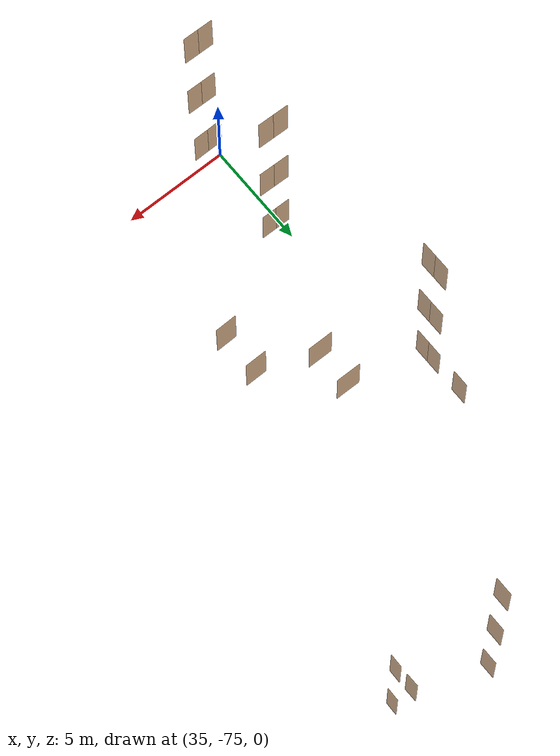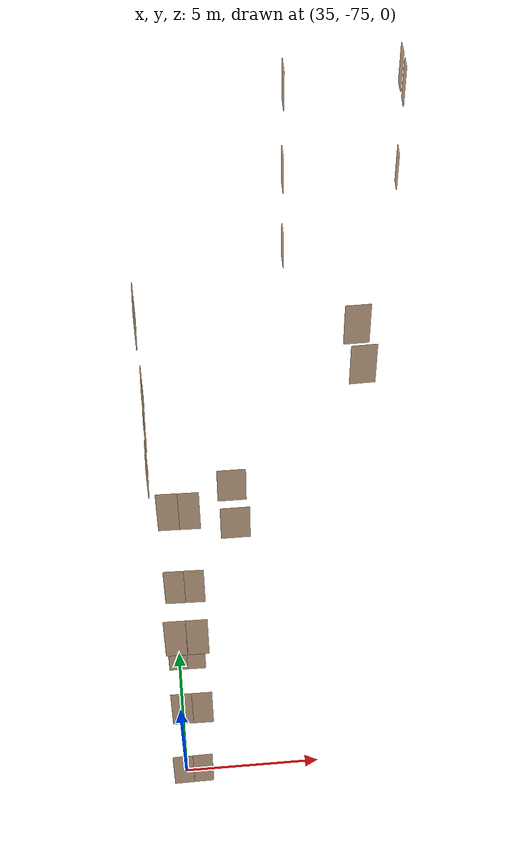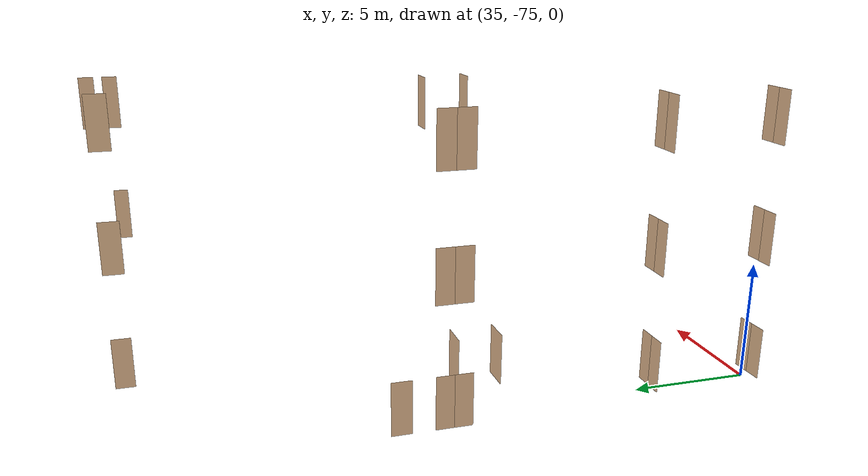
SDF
<sdf version="1.7">
 <world name="sim_world">
  <model name="p19">
   <pose>34.12238896625288 -61.800835530799134 0.0 0 0 1.5707963267948966</pose>
   <link name="right">
    <pose>0.3727222897099356 0 1.11 0 0 0</pose>
    <visual name="right_visual">
     <geometry><box><size>0.7354445794198712 0.03 2.2</size></box></geometry>
     <material>
      <ambient>0.5 0.25 0 0.6</ambient>
      <diffuse>0.5 0.25 0 0.6</diffuse>
      <pbr><metal><metalness>0.0</metalness></metal></pbr>
     </material>
    </visual>
    <collision name="right_collision">
     <geometry><box><size>0.7354445794198712 0.03 2.2</size></box></geometry>
     <surface><contact><collide_bitmask>0x02</collide_bitmask></contact></surface>
    </collision>
    <inertial>
     <mass>50.0</mass>
     <inertia><ixx>20.17041666666667</ixx><iyy>22.420328039158633</iyy><izz>2.2574113724919638</izz></inertia>
    </inertial>
   </link>
   <joint name="right_joint" type="revolute">
    <parent>world</parent>
    <child>right</child>
    <axis><xyz>0 0 -1</xyz><limit><lower>0</lower><upper>1.57</upper></limit></axis>
    <pose>0.3727222897099356 0 0 0 0 0</pose>
   </joint>
   <link name="left">
    <pose>-0.3727222897099356 0 1.11 0 0 0</pose>
    <visual name="left_visual">
     <geometry><box><size>0.7354445794198712 0.03 2.2</size></box></geometry>
     <material>
      <ambient>0.5 0.25 0 0.6</ambient>
      <diffuse>0.5 0.25 0 0.6</diffuse>
      <pbr><metal><metalness>0.0</metalness></metal></pbr>
     </material>
    </visual>
    <collision name="left_collision">
     <geometry><box><size>0.7354445794198712 0.03 2.2</size></box></geometry>
     <surface><contact><collide_bitmask>0x02</collide_bitmask></contact></surface>
    </collision>
    <inertial>
     <mass>50.0</mass>
     <inertia><ixx>20.17041666666667</ixx><iyy>22.420328039158633</iyy><izz>2.2574113724919638</izz></inertia>
    </inertial>
   </link>
   <joint name="left_joint" type="revolute">
    <parent>world</parent>
    <child>left</child>
    <axis><xyz>0 0 -1</xyz><limit><lower>-1.57</lower><upper>0</upper></limit></axis>
    <pose>-0.3727222897099356 0 0 0 0 0</pose>
   </joint>
   <plugin name="register_component" filename="libregister_component.so">
    <component name="Door">
     <v_max_door>0.5</v_max_door>
     <a_max_door>0.3</a_max_door>
     <a_nom_door>0.15</a_nom_door>
     <dx_min_door>0.01</dx_min_door>
     <f_max_door>500.0</f_max_door>
     <ros_interface>true</ros_interface>
     <door name="p19" type="DoubleSwingDoor" left_joint_name="left_joint" right_joint_name="right_joint"/>
    </component>
   </plugin>
  </model>
  <model name="p23">
   <pose>37.64218467600962 -64.78136944090551 0.0 0 0 3.1396408370814752</pose>
   <link name="right">
    <pose>0 0 1.11 0 0 0</pose>
    <visual name="right_visual">
     <geometry><box><size>1.219588132161828 0.03 2.2</size></box></geometry>
     <material>
      <ambient>0.5 0.25 0 0.6</ambient>
      <diffuse>0.5 0.25 0 0.6</diffuse>
      <pbr><metal><metalness>0.0</metalness></metal></pbr>
     </material>
    </visual>
    <collision name="right_collision">
     <geometry><box><size>1.219588132161828 0.03 2.2</size></box></geometry>
     <surface><contact><collide_bitmask>0x02</collide_bitmask></contact></surface>
    </collision>
    <inertial>
     <mass>50.0</mass>
     <inertia><ixx>20.17041666666667</ixx><iyy>26.364146717124907</iyy><izz>6.201230050458236</izz></inertia>
    </inertial>
   </link>
   <joint name="right_joint" type="revolute">
    <parent>world</parent>
    <child>right</child>
    <axis><xyz>0 0 1</xyz><limit><lower>0</lower><upper>1.57</upper></limit></axis>
    <pose>0.614794066080914 0 0 0 0 0</pose>
   </joint>
   <plugin name="register_component" filename="libregister_component.so">
    <component name="Door">
     <v_max_door>0.5</v_max_door>
     <a_max_door>0.3</a_max_door>
     <a_nom_door>0.15</a_nom_door>
     <dx_min_door>0.01</dx_min_door>
     <f_max_door>500.0</f_max_door>
     <ros_interface>true</ros_interface>
     <door name="p23" type="SwingDoor" left_joint_name="empty_joint" right_joint_name="right_joint"/>
    </component>
   </plugin>
  </model>
  <model name="p24">
   <pose>37.62421854167287 -62.91381366478035 0.0 0 0 3.1363686303415452</pose>
   <link name="right">
    <pose>0 0 1.11 0 0 0</pose>
    <visual name="right_visual">
     <geometry><box><size>1.210824930721479 0.03 2.2</size></box></geometry>
     <material>
      <ambient>0.5 0.25 0 0.6</ambient>
      <diffuse>0.5 0.25 0 0.6</diffuse>
      <pbr><metal><metalness>0.0</metalness></metal></pbr>
     </material>
    </visual>
    <collision name="right_collision">
     <geometry><box><size>1.210824930721479 0.03 2.2</size></box></geometry>
     <surface><contact><collide_bitmask>0x02</collide_bitmask></contact></surface>
    </collision>
    <inertial>
     <mass>50.0</mass>
     <inertia><ixx>20.17041666666667</ixx><iyy>26.275404220236148</iyy><izz>6.112487553569475</izz></inertia>
    </inertial>
   </link>
   <joint name="right_joint" type="revolute">
    <parent>world</parent>
    <child>right</child>
    <axis><xyz>0 0 -1</xyz><limit><lower>0</lower><upper>1.57</upper></limit></axis>
    <pose>0.6104124653607395 0 0 0 0 0</pose>
   </joint>
   <plugin name="register_component" filename="libregister_component.so">
    <component name="Door">
     <v_max_door>0.5</v_max_door>
     <a_max_door>0.3</a_max_door>
     <a_nom_door>0.15</a_nom_door>
     <dx_min_door>0.01</dx_min_door>
     <f_max_door>500.0</f_max_door>
     <ros_interface>true</ros_interface>
     <door name="p24" type="SwingDoor" left_joint_name="empty_joint" right_joint_name="right_joint"/>
    </component>
   </plugin>
  </model>
  <model name="p28">
   <pose>35.298942994281674 -70.71621581582772 0.0 0 0 3.1317184949314316</pose>
   <link name="right">
    <pose>0.3589568635866615 0 1.11 0 0 0</pose>
    <visual name="right_visual">
     <geometry><box><size>0.707913727173323 0.03 2.2</size></box></geometry>
     <material>
      <ambient>0.5 0.25 0 0.6</ambient>
      <diffuse>0.5 0.25 0 0.6</diffuse>
      <pbr><metal><metalness>0.0</metalness></metal></pbr>
     </material>
    </visual>
    <collision name="right_collision">
     <geometry><box><size>0.707913727173323 0.03 2.2</size></box></geometry>
     <surface><contact><collide_bitmask>0x02</collide_bitmask></contact></surface>
    </collision>
    <inertial>
     <mass>50.0</mass>
     <inertia><ixx>20.17041666666667</ixx><iyy>22.254757688001778</iyy><izz>2.091841021335109</izz></inertia>
    </inertial>
   </link>
   <joint name="right_joint" type="revolute">
    <parent>world</parent>
    <child>right</child>
    <axis><xyz>0 0 -1</xyz><limit><lower>0</lower><upper>1.57</upper></limit></axis>
    <pose>0.3589568635866615 0 0 0 0 0</pose>
   </joint>
   <link name="left">
    <pose>-0.3589568635866615 0 1.11 0 0 0</pose>
    <visual name="left_visual">
     <geometry><box><size>0.707913727173323 0.03 2.2</size></box></geometry>
     <material>
      <ambient>0.5 0.25 0 0.6</ambient>
      <diffuse>0.5 0.25 0 0.6</diffuse>
      <pbr><metal><metalness>0.0</metalness></metal></pbr>
     </material>
    </visual>
    <collision name="left_collision">
     <geometry><box><size>0.707913727173323 0.03 2.2</size></box></geometry>
     <surface><contact><collide_bitmask>0x02</collide_bitmask></contact></surface>
    </collision>
    <inertial>
     <mass>50.0</mass>
     <inertia><ixx>20.17041666666667</ixx><iyy>22.254757688001778</iyy><izz>2.091841021335109</izz></inertia>
    </inertial>
   </link>
   <joint name="left_joint" type="revolute">
    <parent>world</parent>
    <child>left</child>
    <axis><xyz>0 0 -1</xyz><limit><lower>-1.57</lower><upper>0</upper></limit></axis>
    <pose>-0.3589568635866615 0 0 0 0 0</pose>
   </joint>
   <plugin name="register_component" filename="libregister_component.so">
    <component name="Door">
     <v_max_door>0.5</v_max_door>
     <a_max_door>0.3</a_max_door>
     <a_nom_door>0.15</a_nom_door>
     <dx_min_door>0.01</dx_min_door>
     <f_max_door>500.0</f_max_door>
     <ros_interface>true</ros_interface>
     <door name="p28" type="DoubleSwingDoor" left_joint_name="left_joint" right_joint_name="right_joint"/>
    </component>
   </plugin>
  </model>
  <model name="p29">
   <pose>35.28278791739507 -75.47439705490214 0.0 0 0 0.014923811866204915</pose>
   <link name="right">
    <pose>0.36593546407703104 0 1.11 0 0 0</pose>
    <visual name="right_visual">
     <geometry><box><size>0.7218709281540621 0.03 2.2</size></box></geometry>
     <material>
      <ambient>0.5 0.25 0 0.6</ambient>
      <diffuse>0.5 0.25 0 0.6</diffuse>
      <pbr><metal><metalness>0.0</metalness></metal></pbr>
     </material>
    </visual>
    <collision name="right_collision">
     <geometry><box><size>0.7218709281540621 0.03 2.2</size></box></geometry>
     <surface><contact><collide_bitmask>0x02</collide_bitmask></contact></surface>
    </collision>
    <inertial>
     <mass>50.0</mass>
     <inertia><ixx>20.17041666666667</ixx><iyy>22.337906820475034</iyy><izz>2.1749901538083627</izz></inertia>
    </inertial>
   </link>
   <joint name="right_joint" type="revolute">
    <parent>world</parent>
    <child>right</child>
    <axis><xyz>0 0 -1</xyz><limit><lower>0</lower><upper>1.57</upper></limit></axis>
    <pose>0.36593546407703104 0 0 0 0 0</pose>
   </joint>
   <link name="left">
    <pose>-0.36593546407703104 0 1.11 0 0 0</pose>
    <visual name="left_visual">
     <geometry><box><size>0.7218709281540621 0.03 2.2</size></box></geometry>
     <material>
      <ambient>0.5 0.25 0 0.6</ambient>
      <diffuse>0.5 0.25 0 0.6</diffuse>
      <pbr><metal><metalness>0.0</metalness></metal></pbr>
     </material>
    </visual>
    <collision name="left_collision">
     <geometry><box><size>0.7218709281540621 0.03 2.2</size></box></geometry>
     <surface><contact><collide_bitmask>0x02</collide_bitmask></contact></surface>
    </collision>
    <inertial>
     <mass>50.0</mass>
     <inertia><ixx>20.17041666666667</ixx><iyy>22.337906820475034</iyy><izz>2.1749901538083627</izz></inertia>
    </inertial>
   </link>
   <joint name="left_joint" type="revolute">
    <parent>world</parent>
    <child>left</child>
    <axis><xyz>0 0 -1</xyz><limit><lower>-1.57</lower><upper>0</upper></limit></axis>
    <pose>-0.36593546407703104 0 0 0 0 0</pose>
   </joint>
   <plugin name="register_component" filename="libregister_component.so">
    <component name="Door">
     <v_max_door>0.5</v_max_door>
     <a_max_door>0.3</a_max_door>
     <a_nom_door>0.15</a_nom_door>
     <dx_min_door>0.01</dx_min_door>
     <f_max_door>500.0</f_max_door>
     <ros_interface>true</ros_interface>
     <door name="p29" type="DoubleSwingDoor" left_joint_name="left_joint" right_joint_name="right_joint"/>
    </component>
   </plugin>
  </model>
  <model name="p32">
   <pose>40.9856522769696 -49.66876166632103 0.0 0 0 1.5707963267948966</pose>
   <link name="right">
    <pose>0 0 1.11 0 0 0</pose>
    <visual name="right_visual">
     <geometry><box><size>0.8034647862285504 0.03 2.2</size></box></geometry>
     <material>
      <ambient>0.5 0.25 0 0.6</ambient>
      <diffuse>0.5 0.25 0 0.6</diffuse>
      <pbr><metal><metalness>0.0</metalness></metal></pbr>
     </material>
    </visual>
    <collision name="right_collision">
     <geometry><box><size>0.8034647862285504 0.03 2.2</size></box></geometry>
     <surface><contact><collide_bitmask>0x02</collide_bitmask></contact></surface>
    </collision>
    <inertial>
     <mass>50.0</mass>
     <inertia><ixx>20.17041666666667</ixx><iyy>22.85648192795538</iyy><izz>2.6935652612887093</izz></inertia>
    </inertial>
   </link>
   <joint name="right_joint" type="revolute">
    <parent>world</parent>
    <child>right</child>
    <axis><xyz>0 0 1</xyz><limit><lower>0</lower><upper>1.57</upper></limit></axis>
    <pose>0.4067323931142752 0 0 0 0 0</pose>
   </joint>
   <plugin name="register_component" filename="libregister_component.so">
    <component name="Door">
     <v_max_door>0.5</v_max_door>
     <a_max_door>0.3</a_max_door>
     <a_nom_door>0.15</a_nom_door>
     <dx_min_door>0.01</dx_min_door>
     <f_max_door>500.0</f_max_door>
     <ros_interface>true</ros_interface>
     <door name="p32" type="SwingDoor" left_joint_name="empty_joint" right_joint_name="right_joint"/>
    </component>
   </plugin>
  </model>
  <model name="door5">
   <pose>34.12012236674472 -59.730774643714305 0.0 0 0 -1.5707963267948966</pose>
   <link name="right">
    <pose>0 0 1.11 0 0 0</pose>
    <visual name="right_visual">
     <geometry><box><size>0.8218197979319137 0.03 2.2</size></box></geometry>
     <material>
      <ambient>0.5 0.25 0 0.6</ambient>
      <diffuse>0.5 0.25 0 0.6</diffuse>
      <pbr><metal><metalness>0.0</metalness></metal></pbr>
     </material>
    </visual>
    <collision name="right_collision">
     <geometry><box><size>0.8218197979319137 0.03 2.2</size></box></geometry>
     <surface><contact><collide_bitmask>0x02</collide_bitmask></contact></surface>
    </collision>
    <inertial>
     <mass>50.0</mass>
     <inertia><ixx>20.17041666666667</ixx><iyy>22.980782417803553</iyy><izz>2.8178657511368814</izz></inertia>
    </inertial>
   </link>
   <joint name="right_joint" type="revolute">
    <parent>world</parent>
    <child>right</child>
    <axis><xyz>0 0 -1</xyz><limit><lower>0</lower><upper>1.57</upper></limit></axis>
    <pose>0.41590989896595687 0 0 0 0 0</pose>
   </joint>
   <plugin name="register_component" filename="libregister_component.so">
    <component name="Door">
     <v_max_door>0.5</v_max_door>
     <a_max_door>0.3</a_max_door>
     <a_nom_door>0.15</a_nom_door>
     <dx_min_door>0.01</dx_min_door>
     <f_max_door>500.0</f_max_door>
     <ros_interface>true</ros_interface>
     <door name="door5" type="SwingDoor" left_joint_name="empty_joint" right_joint_name="right_joint"/>
    </component>
   </plugin>
  </model>
  <model name="puerta6">
   <pose>46.037069137630155 -49.996339006558664 5.0 0 0 1.5488676221850708</pose>
   <link name="right">
    <pose>0 0 1.11 0 0 0</pose>
    <visual name="right_visual">
     <geometry><box><size>0.5999658065378123 0.03 2.2</size></box></geometry>
     <material>
      <ambient>0.5 0.25 0 0.6</ambient>
      <diffuse>0.5 0.25 0 0.6</diffuse>
      <pbr><metal><metalness>0.0</metalness></metal></pbr>
     </material>
    </visual>
    <collision name="right_collision">
     <geometry><box><size>0.5999658065378123 0.03 2.2</size></box></geometry>
     <surface><contact><collide_bitmask>0x02</collide_bitmask></contact></surface>
    </collision>
    <inertial>
     <mass>50.0</mass>
     <inertia><ixx>20.17041666666667</ixx><iyy>21.666495704227373</iyy><izz>1.5035790375606983</izz></inertia>
    </inertial>
   </link>
   <joint name="right_joint" type="revolute">
    <parent>world</parent>
    <child>right</child>
    <axis><xyz>0 0 -1</xyz><limit><lower>0</lower><upper>1.57</upper></limit></axis>
    <pose>0.30498290326890615 0 0 0 0 0</pose>
   </joint>
   <plugin name="register_component" filename="libregister_component.so">
    <component name="Door">
     <v_max_door>0.5</v_max_door>
     <a_max_door>0.3</a_max_door>
     <a_nom_door>0.15</a_nom_door>
     <dx_min_door>0.01</dx_min_door>
     <f_max_door>500.0</f_max_door>
     <ros_interface>true</ros_interface>
     <door name="puerta6" type="SwingDoor" left_joint_name="empty_joint" right_joint_name="right_joint"/>
    </component>
   </plugin>
  </model>
  <model name="puerta28">
   <pose>34.253607469267486 -61.79365539443898 5.0 0 0 1.5741227009261627</pose>
   <link name="right">
    <pose>0.37293951663184066 0 1.11 0 0 0</pose>
    <visual name="right_visual">
     <geometry><box><size>0.7358790332636813 0.03 2.2</size></box></geometry>
     <material>
      <ambient>0.5 0.25 0 0.6</ambient>
      <diffuse>0.5 0.25 0 0.6</diffuse>
      <pbr><metal><metalness>0.0</metalness></metal></pbr>
     </material>
    </visual>
    <collision name="right_collision">
     <geometry><box><size>0.7358790332636813 0.03 2.2</size></box></geometry>
     <surface><contact><collide_bitmask>0x02</collide_bitmask></contact></surface>
    </collision>
    <inertial>
     <mass>50.0</mass>
     <inertia><ixx>20.17041666666667</ixx><iyy>22.422991464987877</iyy><izz>2.260074798321209</izz></inertia>
    </inertial>
   </link>
   <joint name="right_joint" type="revolute">
    <parent>world</parent>
    <child>right</child>
    <axis><xyz>0 0 -1</xyz><limit><lower>0</lower><upper>1.57</upper></limit></axis>
    <pose>0.37293951663184066 0 0 0 0 0</pose>
   </joint>
   <link name="left">
    <pose>-0.37293951663184066 0 1.11 0 0 0</pose>
    <visual name="left_visual">
     <geometry><box><size>0.7358790332636813 0.03 2.2</size></box></geometry>
     <material>
      <ambient>0.5 0.25 0 0.6</ambient>
      <diffuse>0.5 0.25 0 0.6</diffuse>
      <pbr><metal><metalness>0.0</metalness></metal></pbr>
     </material>
    </visual>
    <collision name="left_collision">
     <geometry><box><size>0.7358790332636813 0.03 2.2</size></box></geometry>
     <surface><contact><collide_bitmask>0x02</collide_bitmask></contact></surface>
    </collision>
    <inertial>
     <mass>50.0</mass>
     <inertia><ixx>20.17041666666667</ixx><iyy>22.422991464987877</iyy><izz>2.260074798321209</izz></inertia>
    </inertial>
   </link>
   <joint name="left_joint" type="revolute">
    <parent>world</parent>
    <child>left</child>
    <axis><xyz>0 0 -1</xyz><limit><lower>-1.57</lower><upper>0</upper></limit></axis>
    <pose>-0.37293951663184066 0 0 0 0 0</pose>
   </joint>
   <plugin name="register_component" filename="libregister_component.so">
    <component name="Door">
     <v_max_door>0.5</v_max_door>
     <a_max_door>0.3</a_max_door>
     <a_nom_door>0.15</a_nom_door>
     <dx_min_door>0.01</dx_min_door>
     <f_max_door>500.0</f_max_door>
     <ros_interface>true</ros_interface>
     <door name="puerta28" type="DoubleSwingDoor" left_joint_name="left_joint" right_joint_name="right_joint"/>
    </component>
   </plugin>
  </model>
  <model name="puerta34">
   <pose>35.423016030505025 -75.52596252445784 5.0 0 0 3.129341827471866</pose>
   <link name="right">
    <pose>0.3579080965629846 0 1.11 0 0 0</pose>
    <visual name="right_visual">
     <geometry><box><size>0.7058161931259692 0.03 2.2</size></box></geometry>
     <material>
      <ambient>0.5 0.25 0 0.6</ambient>
      <diffuse>0.5 0.25 0 0.6</diffuse>
      <pbr><metal><metalness>0.0</metalness></metal></pbr>
     </material>
    </visual>
    <collision name="right_collision">
     <geometry><box><size>0.7058161931259692 0.03 2.2</size></box></geometry>
     <surface><contact><collide_bitmask>0x02</collide_bitmask></contact></surface>
    </collision>
    <inertial>
     <mass>50.0</mass>
     <inertia><ixx>20.17041666666667</ixx><iyy>22.242402076995152</iyy><izz>2.0794854103284814</izz></inertia>
    </inertial>
   </link>
   <joint name="right_joint" type="revolute">
    <parent>world</parent>
    <child>right</child>
    <axis><xyz>0 0 1</xyz><limit><lower>0</lower><upper>1.57</upper></limit></axis>
    <pose>0.3579080965629846 0 0 0 0 0</pose>
   </joint>
   <link name="left">
    <pose>-0.3579080965629846 0 1.11 0 0 0</pose>
    <visual name="left_visual">
     <geometry><box><size>0.7058161931259692 0.03 2.2</size></box></geometry>
     <material>
      <ambient>0.5 0.25 0 0.6</ambient>
      <diffuse>0.5 0.25 0 0.6</diffuse>
      <pbr><metal><metalness>0.0</metalness></metal></pbr>
     </material>
    </visual>
    <collision name="left_collision">
     <geometry><box><size>0.7058161931259692 0.03 2.2</size></box></geometry>
     <surface><contact><collide_bitmask>0x02</collide_bitmask></contact></surface>
    </collision>
    <inertial>
     <mass>50.0</mass>
     <inertia><ixx>20.17041666666667</ixx><iyy>22.242402076995152</iyy><izz>2.0794854103284814</izz></inertia>
    </inertial>
   </link>
   <joint name="left_joint" type="revolute">
    <parent>world</parent>
    <child>left</child>
    <axis><xyz>0 0 1</xyz><limit><lower>-1.57</lower><upper>0</upper></limit></axis>
    <pose>-0.3579080965629846 0 0 0 0 0</pose>
   </joint>
   <plugin name="register_component" filename="libregister_component.so">
    <component name="Door">
     <v_max_door>0.5</v_max_door>
     <a_max_door>0.3</a_max_door>
     <a_nom_door>0.15</a_nom_door>
     <dx_min_door>0.01</dx_min_door>
     <f_max_door>500.0</f_max_door>
     <ros_interface>true</ros_interface>
     <door name="puerta34" type="DoubleSwingDoor" left_joint_name="left_joint" right_joint_name="right_joint"/>
    </component>
   </plugin>
  </model>
  <model name="puerta35">
   <pose>35.42035528107424 -70.62950203021643 5.0 0 0 3.1185401502027488</pose>
   <link name="right">
    <pose>0.37019257687369034 0 1.11 0 0 0</pose>
    <visual name="right_visual">
     <geometry><box><size>0.7303851537473807 0.03 2.2</size></box></geometry>
     <material>
      <ambient>0.5 0.25 0 0.6</ambient>
      <diffuse>0.5 0.25 0 0.6</diffuse>
      <pbr><metal><metalness>0.0</metalness></metal></pbr>
     </material>
    </visual>
    <collision name="right_collision">
     <geometry><box><size>0.7303851537473807 0.03 2.2</size></box></geometry>
     <surface><contact><collide_bitmask>0x02</collide_bitmask></contact></surface>
    </collision>
    <inertial>
     <mass>50.0</mass>
     <inertia><ixx>20.17041666666667</ixx><iyy>22.389426970060775</iyy><izz>2.226510303394104</izz></inertia>
    </inertial>
   </link>
   <joint name="right_joint" type="revolute">
    <parent>world</parent>
    <child>right</child>
    <axis><xyz>0 0 -1</xyz><limit><lower>0</lower><upper>1.57</upper></limit></axis>
    <pose>0.37019257687369034 0 0 0 0 0</pose>
   </joint>
   <link name="left">
    <pose>-0.37019257687369034 0 1.11 0 0 0</pose>
    <visual name="left_visual">
     <geometry><box><size>0.7303851537473807 0.03 2.2</size></box></geometry>
     <material>
      <ambient>0.5 0.25 0 0.6</ambient>
      <diffuse>0.5 0.25 0 0.6</diffuse>
      <pbr><metal><metalness>0.0</metalness></metal></pbr>
     </material>
    </visual>
    <collision name="left_collision">
     <geometry><box><size>0.7303851537473807 0.03 2.2</size></box></geometry>
     <surface><contact><collide_bitmask>0x02</collide_bitmask></contact></surface>
    </collision>
    <inertial>
     <mass>50.0</mass>
     <inertia><ixx>20.17041666666667</ixx><iyy>22.389426970060775</iyy><izz>2.226510303394104</izz></inertia>
    </inertial>
   </link>
   <joint name="left_joint" type="revolute">
    <parent>world</parent>
    <child>left</child>
    <axis><xyz>0 0 -1</xyz><limit><lower>-1.57</lower><upper>0</upper></limit></axis>
    <pose>-0.37019257687369034 0 0 0 0 0</pose>
   </joint>
   <plugin name="register_component" filename="libregister_component.so">
    <component name="Door">
     <v_max_door>0.5</v_max_door>
     <a_max_door>0.3</a_max_door>
     <a_nom_door>0.15</a_nom_door>
     <dx_min_door>0.01</dx_min_door>
     <f_max_door>500.0</f_max_door>
     <ros_interface>true</ros_interface>
     <door name="puerta35" type="DoubleSwingDoor" left_joint_name="left_joint" right_joint_name="right_joint"/>
    </component>
   </plugin>
  </model>
  <model name="puerta40">
   <pose>40.957884919761085 -49.67409492563547 5.0 0 0 1.5681938553001717</pose>
   <link name="right">
    <pose>0 0 1.11 0 0 0</pose>
    <visual name="right_visual">
     <geometry><box><size>0.8449339744371449 0.03 2.2</size></box></geometry>
     <material>
      <ambient>0.5 0.25 0 0.6</ambient>
      <diffuse>0.5 0.25 0 0.6</diffuse>
      <pbr><metal><metalness>0.0</metalness></metal></pbr>
     </material>
    </visual>
    <collision name="right_collision">
     <geometry><box><size>0.8449339744371449 0.03 2.2</size></box></geometry>
     <surface><contact><collide_bitmask>0x02</collide_bitmask></contact></surface>
    </collision>
    <inertial>
     <mass>50.0</mass>
     <inertia><ixx>20.17041666666667</ixx><iyy>23.141305921492297</iyy><izz>2.9783892548256246</izz></inertia>
    </inertial>
   </link>
   <joint name="right_joint" type="revolute">
    <parent>world</parent>
    <child>right</child>
    <axis><xyz>0 0 1</xyz><limit><lower>0</lower><upper>1.57</upper></limit></axis>
    <pose>0.42746698721857246 0 0 0 0 0</pose>
   </joint>
   <plugin name="register_component" filename="libregister_component.so">
    <component name="Door">
     <v_max_door>0.5</v_max_door>
     <a_max_door>0.3</a_max_door>
     <a_nom_door>0.15</a_nom_door>
     <dx_min_door>0.01</dx_min_door>
     <f_max_door>500.0</f_max_door>
     <ros_interface>true</ros_interface>
     <door name="puerta40" type="SwingDoor" left_joint_name="empty_joint" right_joint_name="right_joint"/>
    </component>
   </plugin>
  </model>
  <model name="puerta101">
   <pose>46.03941508214537 -49.044728394355296 10.0 0 0 1.5847268788307451</pose>
   <link name="right">
    <pose>0 0 1.11 0 0 0</pose>
    <visual name="right_visual">
     <geometry><box><size>0.614373993084187 0.03 2.2</size></box></geometry>
     <material>
      <ambient>0.5 0.25 0 0.6</ambient>
      <diffuse>0.5 0.25 0 0.6</diffuse>
      <pbr><metal><metalness>0.0</metalness></metal></pbr>
     </material>
    </visual>
    <collision name="right_collision">
     <geometry><box><size>0.614373993084187 0.03 2.2</size></box></geometry>
     <surface><contact><collide_bitmask>0x02</collide_bitmask></contact></surface>
    </collision>
    <inertial>
     <mass>50.0</mass>
     <inertia><ixx>20.17041666666667</ixx><iyy>21.739397514075872</iyy><izz>1.5764808474092031</izz></inertia>
    </inertial>
   </link>
   <joint name="right_joint" type="revolute">
    <parent>world</parent>
    <child>right</child>
    <axis><xyz>0 0 -1</xyz><limit><lower>0</lower><upper>1.57</upper></limit></axis>
    <pose>0.31218699654209353 0 0 0 0 0</pose>
   </joint>
   <plugin name="register_component" filename="libregister_component.so">
    <component name="Door">
     <v_max_door>0.5</v_max_door>
     <a_max_door>0.3</a_max_door>
     <a_nom_door>0.15</a_nom_door>
     <dx_min_door>0.01</dx_min_door>
     <f_max_door>500.0</f_max_door>
     <ros_interface>true</ros_interface>
     <door name="puerta101" type="SwingDoor" left_joint_name="empty_joint" right_joint_name="right_joint"/>
    </component>
   </plugin>
  </model>
  <model name="puerta102">
   <pose>46.03712878338813 -49.99652483189532 10.0 0 0 1.5488693326619902</pose>
   <link name="right">
    <pose>0 0 1.11 0 0 0</pose>
    <visual name="right_visual">
     <geometry><box><size>0.5999729355779146 0.03 2.2</size></box></geometry>
     <material>
      <ambient>0.5 0.25 0 0.6</ambient>
      <diffuse>0.5 0.25 0 0.6</diffuse>
      <pbr><metal><metalness>0.0</metalness></metal></pbr>
     </material>
    </visual>
    <collision name="right_collision">
     <geometry><box><size>0.5999729355779146 0.03 2.2</size></box></geometry>
     <surface><contact><collide_bitmask>0x02</collide_bitmask></contact></surface>
    </collision>
    <inertial>
     <mass>50.0</mass>
     <inertia><ixx>20.17041666666667</ixx><iyy>21.66653134760826</iyy><izz>1.5036146809415858</izz></inertia>
    </inertial>
   </link>
   <joint name="right_joint" type="revolute">
    <parent>world</parent>
    <child>right</child>
    <axis><xyz>0 0 -1</xyz><limit><lower>0</lower><upper>1.57</upper></limit></axis>
    <pose>0.3049864677889573 0 0 0 0 0</pose>
   </joint>
   <plugin name="register_component" filename="libregister_component.so">
    <component name="Door">
     <v_max_door>0.5</v_max_door>
     <a_max_door>0.3</a_max_door>
     <a_nom_door>0.15</a_nom_door>
     <dx_min_door>0.01</dx_min_door>
     <f_max_door>500.0</f_max_door>
     <ros_interface>true</ros_interface>
     <door name="puerta102" type="SwingDoor" left_joint_name="empty_joint" right_joint_name="right_joint"/>
    </component>
   </plugin>
  </model>
  <model name="puerta115">
   <pose>34.25354957385674 -61.79399925772002 10.0 0 0 1.5741244114030446</pose>
   <link name="right">
    <pose>0.3729438754020219 0 1.11 0 0 0</pose>
    <visual name="right_visual">
     <geometry><box><size>0.7358877508040438 0.03 2.2</size></box></geometry>
     <material>
      <ambient>0.5 0.25 0 0.6</ambient>
      <diffuse>0.5 0.25 0 0.6</diffuse>
      <pbr><metal><metalness>0.0</metalness></metal></pbr>
     </material>
    </visual>
    <collision name="right_collision">
     <geometry><box><size>0.7358877508040438 0.03 2.2</size></box></geometry>
     <surface><contact><collide_bitmask>0x02</collide_bitmask></contact></surface>
    </collision>
    <inertial>
     <mass>50.0</mass>
     <inertia><ixx>20.17041666666667</ixx><iyy>22.42304492409765</iyy><izz>2.260128257430977</izz></inertia>
    </inertial>
   </link>
   <joint name="right_joint" type="revolute">
    <parent>world</parent>
    <child>right</child>
    <axis><xyz>0 0 -1</xyz><limit><lower>0</lower><upper>1.57</upper></limit></axis>
    <pose>0.3729438754020219 0 0 0 0 0</pose>
   </joint>
   <link name="left">
    <pose>-0.3729438754020219 0 1.11 0 0 0</pose>
    <visual name="left_visual">
     <geometry><box><size>0.7358877508040438 0.03 2.2</size></box></geometry>
     <material>
      <ambient>0.5 0.25 0 0.6</ambient>
      <diffuse>0.5 0.25 0 0.6</diffuse>
      <pbr><metal><metalness>0.0</metalness></metal></pbr>
     </material>
    </visual>
    <collision name="left_collision">
     <geometry><box><size>0.7358877508040438 0.03 2.2</size></box></geometry>
     <surface><contact><collide_bitmask>0x02</collide_bitmask></contact></surface>
    </collision>
    <inertial>
     <mass>50.0</mass>
     <inertia><ixx>20.17041666666667</ixx><iyy>22.42304492409765</iyy><izz>2.260128257430977</izz></inertia>
    </inertial>
   </link>
   <joint name="left_joint" type="revolute">
    <parent>world</parent>
    <child>left</child>
    <axis><xyz>0 0 -1</xyz><limit><lower>-1.57</lower><upper>0</upper></limit></axis>
    <pose>-0.3729438754020219 0 0 0 0 0</pose>
   </joint>
   <plugin name="register_component" filename="libregister_component.so">
    <component name="Door">
     <v_max_door>0.5</v_max_door>
     <a_max_door>0.3</a_max_door>
     <a_nom_door>0.15</a_nom_door>
     <dx_min_door>0.01</dx_min_door>
     <f_max_door>500.0</f_max_door>
     <ros_interface>true</ros_interface>
     <door name="puerta115" type="DoubleSwingDoor" left_joint_name="left_joint" right_joint_name="right_joint"/>
    </component>
   </plugin>
  </model>
  <model name="puerta118">
   <pose>35.422995291747654 -75.52646488524603 10.0 0 0 3.1293435379487637</pose>
   <link name="right">
    <pose>0.3579122796518471 0 1.11 0 0 0</pose>
    <visual name="right_visual">
     <geometry><box><size>0.7058245593036941 0.03 2.2</size></box></geometry>
     <material>
      <ambient>0.5 0.25 0 0.6</ambient>
      <diffuse>0.5 0.25 0 0.6</diffuse>
      <pbr><metal><metalness>0.0</metalness></metal></pbr>
     </material>
    </visual>
    <collision name="right_collision">
     <geometry><box><size>0.7058245593036941 0.03 2.2</size></box></geometry>
     <surface><contact><collide_bitmask>0x02</collide_bitmask></contact></surface>
    </collision>
    <inertial>
     <mass>50.0</mass>
     <inertia><ixx>20.17041666666667</ixx><iyy>22.242451285484396</iyy><izz>2.0795346188177253</izz></inertia>
    </inertial>
   </link>
   <joint name="right_joint" type="revolute">
    <parent>world</parent>
    <child>right</child>
    <axis><xyz>0 0 1</xyz><limit><lower>0</lower><upper>1.57</upper></limit></axis>
    <pose>0.3579122796518471 0 0 0 0 0</pose>
   </joint>
   <link name="left">
    <pose>-0.3579122796518471 0 1.11 0 0 0</pose>
    <visual name="left_visual">
     <geometry><box><size>0.7058245593036941 0.03 2.2</size></box></geometry>
     <material>
      <ambient>0.5 0.25 0 0.6</ambient>
      <diffuse>0.5 0.25 0 0.6</diffuse>
      <pbr><metal><metalness>0.0</metalness></metal></pbr>
     </material>
    </visual>
    <collision name="left_collision">
     <geometry><box><size>0.7058245593036941 0.03 2.2</size></box></geometry>
     <surface><contact><collide_bitmask>0x02</collide_bitmask></contact></surface>
    </collision>
    <inertial>
     <mass>50.0</mass>
     <inertia><ixx>20.17041666666667</ixx><iyy>22.242451285484396</iyy><izz>2.0795346188177253</izz></inertia>
    </inertial>
   </link>
   <joint name="left_joint" type="revolute">
    <parent>world</parent>
    <child>left</child>
    <axis><xyz>0 0 1</xyz><limit><lower>-1.57</lower><upper>0</upper></limit></axis>
    <pose>-0.3579122796518471 0 0 0 0 0</pose>
   </joint>
   <plugin name="register_component" filename="libregister_component.so">
    <component name="Door">
     <v_max_door>0.5</v_max_door>
     <a_max_door>0.3</a_max_door>
     <a_nom_door>0.15</a_nom_door>
     <dx_min_door>0.01</dx_min_door>
     <f_max_door>500.0</f_max_door>
     <ros_interface>true</ros_interface>
     <door name="puerta118" type="DoubleSwingDoor" left_joint_name="left_joint" right_joint_name="right_joint"/>
    </component>
   </plugin>
  </model>
  <model name="puerta119">
   <pose>35.42032613583871 -70.62994716766133 10.0 0 0 3.1185418606796254</pose>
   <link name="right">
    <pose>0.3701969035387201 0 1.11 0 0 0</pose>
    <visual name="right_visual">
     <geometry><box><size>0.7303938070774402 0.03 2.2</size></box></geometry>
     <material>
      <ambient>0.5 0.25 0 0.6</ambient>
      <diffuse>0.5 0.25 0 0.6</diffuse>
      <pbr><metal><metalness>0.0</metalness></metal></pbr>
     </material>
    </visual>
    <collision name="right_collision">
     <geometry><box><size>0.7303938070774402 0.03 2.2</size></box></geometry>
     <surface><contact><collide_bitmask>0x02</collide_bitmask></contact></surface>
    </collision>
    <inertial>
     <mass>50.0</mass>
     <inertia><ixx>20.17041666666667</ixx><iyy>22.389479639237823</iyy><izz>2.2265629725711538</izz></inertia>
    </inertial>
   </link>
   <joint name="right_joint" type="revolute">
    <parent>world</parent>
    <child>right</child>
    <axis><xyz>0 0 -1</xyz><limit><lower>0</lower><upper>1.57</upper></limit></axis>
    <pose>0.3701969035387201 0 0 0 0 0</pose>
   </joint>
   <link name="left">
    <pose>-0.3701969035387201 0 1.11 0 0 0</pose>
    <visual name="left_visual">
     <geometry><box><size>0.7303938070774402 0.03 2.2</size></box></geometry>
     <material>
      <ambient>0.5 0.25 0 0.6</ambient>
      <diffuse>0.5 0.25 0 0.6</diffuse>
      <pbr><metal><metalness>0.0</metalness></metal></pbr>
     </material>
    </visual>
    <collision name="left_collision">
     <geometry><box><size>0.7303938070774402 0.03 2.2</size></box></geometry>
     <surface><contact><collide_bitmask>0x02</collide_bitmask></contact></surface>
    </collision>
    <inertial>
     <mass>50.0</mass>
     <inertia><ixx>20.17041666666667</ixx><iyy>22.389479639237823</iyy><izz>2.2265629725711538</izz></inertia>
    </inertial>
   </link>
   <joint name="left_joint" type="revolute">
    <parent>world</parent>
    <child>left</child>
    <axis><xyz>0 0 -1</xyz><limit><lower>-1.57</lower><upper>0</upper></limit></axis>
    <pose>-0.3701969035387201 0 0 0 0 0</pose>
   </joint>
   <plugin name="register_component" filename="libregister_component.so">
    <component name="Door">
     <v_max_door>0.5</v_max_door>
     <a_max_door>0.3</a_max_door>
     <a_nom_door>0.15</a_nom_door>
     <dx_min_door>0.01</dx_min_door>
     <f_max_door>500.0</f_max_door>
     <ros_interface>true</ros_interface>
     <door name="puerta119" type="DoubleSwingDoor" left_joint_name="left_joint" right_joint_name="right_joint"/>
    </component>
   </plugin>
  </model>
  <model name="puerta120">
   <pose>40.957884650824425 -49.67428567263944 10.0 0 0 1.5681955657770452</pose>
   <link name="right">
    <pose>0 0 1.11 0 0 0</pose>
    <visual name="right_visual">
     <geometry><box><size>0.8449439665686932 0.03 2.2</size></box></geometry>
     <material>
      <ambient>0.5 0.25 0 0.6</ambient>
      <diffuse>0.5 0.25 0 0.6</diffuse>
      <pbr><metal><metalness>0.0</metalness></metal></pbr>
     </material>
    </visual>
    <collision name="right_collision">
     <geometry><box><size>0.8449439665686932 0.03 2.2</size></box></geometry>
     <surface><contact><collide_bitmask>0x02</collide_bitmask></contact></surface>
    </collision>
    <inertial>
     <mass>50.0</mass>
     <inertia><ixx>20.17041666666667</ixx><iyy>23.141376277670158</iyy><izz>2.9784596110034873</izz></inertia>
    </inertial>
   </link>
   <joint name="right_joint" type="revolute">
    <parent>world</parent>
    <child>right</child>
    <axis><xyz>0 0 1</xyz><limit><lower>0</lower><upper>1.57</upper></limit></axis>
    <pose>0.4274719832843466 0 0 0 0 0</pose>
   </joint>
   <plugin name="register_component" filename="libregister_component.so">
    <component name="Door">
     <v_max_door>0.5</v_max_door>
     <a_max_door>0.3</a_max_door>
     <a_nom_door>0.15</a_nom_door>
     <dx_min_door>0.01</dx_min_door>
     <f_max_door>500.0</f_max_door>
     <ros_interface>true</ros_interface>
     <door name="puerta120" type="SwingDoor" left_joint_name="empty_joint" right_joint_name="right_joint"/>
    </component>
   </plugin>
  </model>
  <model name="puerta196">
   <pose>42.50652282638711 -64.80523901126602 10.0 0 0 0.021362952987390438</pose>
   <link name="right">
    <pose>0 0 1.11 0 0 0</pose>
    <visual name="right_visual">
     <geometry><box><size>0.9688414422100814 0.03 2.2</size></box></geometry>
     <material>
      <ambient>0.5 0.25 0 0.6</ambient>
      <diffuse>0.5 0.25 0 0.6</diffuse>
      <pbr><metal><metalness>0.0</metalness></metal></pbr>
     </material>
    </visual>
    <collision name="right_collision">
     <geometry><box><size>0.9688414422100814 0.03 2.2</size></box></geometry>
     <surface><contact><collide_bitmask>0x02</collide_bitmask></contact></surface>
    </collision>
    <inertial>
     <mass>50.0</mass>
     <inertia><ixx>20.17041666666667</ixx><iyy>24.077723917265466</iyy><izz>3.9148072505987943</izz></inertia>
    </inertial>
   </link>
   <joint name="right_joint" type="revolute">
    <parent>world</parent>
    <child>right</child>
    <axis><xyz>0 0 -1</xyz><limit><lower>0</lower><upper>1.57</upper></limit></axis>
    <pose>0.4894207211050407 0 0 0 0 0</pose>
   </joint>
   <plugin name="register_component" filename="libregister_component.so">
    <component name="Door">
     <v_max_door>0.5</v_max_door>
     <a_max_door>0.3</a_max_door>
     <a_nom_door>0.15</a_nom_door>
     <dx_min_door>0.01</dx_min_door>
     <f_max_door>500.0</f_max_door>
     <ros_interface>true</ros_interface>
     <door name="puerta196" type="SwingDoor" left_joint_name="empty_joint" right_joint_name="right_joint"/>
    </component>
   </plugin>
  </model>
  <model name="puerta197">
   <pose>42.514941329748645 -62.90829073380937 10.0 0 0 0.010246149053563736</pose>
   <link name="right">
    <pose>0 0 1.11 0 0 0</pose>
    <visual name="right_visual">
     <geometry><box><size>0.9810731749050858 0.03 2.2</size></box></geometry>
     <material>
      <ambient>0.5 0.25 0 0.6</ambient>
      <diffuse>0.5 0.25 0 0.6</diffuse>
      <pbr><metal><metalness>0.0</metalness></metal></pbr>
     </material>
    </visual>
    <collision name="right_collision">
     <geometry><box><size>0.9810731749050858 0.03 2.2</size></box></geometry>
     <surface><contact><collide_bitmask>0x02</collide_bitmask></contact></surface>
    </collision>
    <inertial>
     <mass>50.0</mass>
     <inertia><ixx>20.17041666666667</ixx><iyy>24.17710239382644</iyy><izz>4.014185727159772</izz></inertia>
    </inertial>
   </link>
   <joint name="right_joint" type="revolute">
    <parent>world</parent>
    <child>right</child>
    <axis><xyz>0 0 1</xyz><limit><lower>0</lower><upper>1.57</upper></limit></axis>
    <pose>0.4955365874525429 0 0 0 0 0</pose>
   </joint>
   <plugin name="register_component" filename="libregister_component.so">
    <component name="Door">
     <v_max_door>0.5</v_max_door>
     <a_max_door>0.3</a_max_door>
     <a_nom_door>0.15</a_nom_door>
     <dx_min_door>0.01</dx_min_door>
     <f_max_door>500.0</f_max_door>
     <ros_interface>true</ros_interface>
     <door name="puerta197" type="SwingDoor" left_joint_name="empty_joint" right_joint_name="right_joint"/>
    </component>
   </plugin>
  </model>
 </world>
</sdf>
